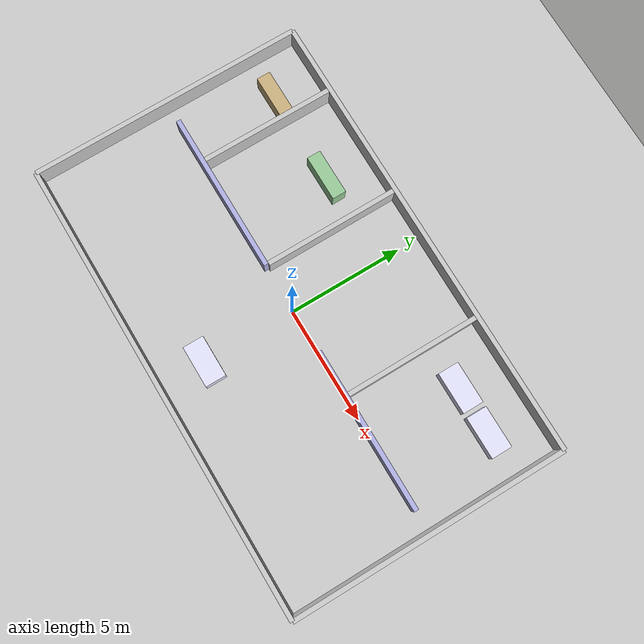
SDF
<?xml version="1.0"?>
<sdf version="1.6">
  <world name="hospital">

    <include><uri>model://ground_plane</uri></include>
    <include><uri>model://sun</uri></include>

    <!-- ── OUTER WALLS ── -->
    <!-- South wall -->
    <model name="wall_south">
      <static>true</static>
      <pose>0 -6 0.5 0 0 0</pose>
      <link name="link">
        <collision name="c"><geometry><box><size>20 0.2 1</size></box></geometry></collision>
        <visual name="v"><geometry><box><size>20 0.2 1</size></box></geometry>
          <material><ambient>0.8 0.8 0.8 1</ambient></material></visual>
      </link>
    </model>

    <!-- North wall -->
    <model name="wall_north">
      <static>true</static>
      <pose>0 6 0.5 0 0 0</pose>
      <link name="link">
        <collision name="c"><geometry><box><size>20 0.2 1</size></box></geometry></collision>
        <visual name="v"><geometry><box><size>20 0.2 1</size></box></geometry>
          <material><ambient>0.8 0.8 0.8 1</ambient></material></visual>
      </link>
    </model>

    <!-- West wall -->
    <model name="wall_west">
      <static>true</static>
      <pose>-10 0 0.5 0 0 0</pose>
      <link name="link">
        <collision name="c"><geometry><box><size>0.2 12 1</size></box></geometry></collision>
        <visual name="v"><geometry><box><size>0.2 12 1</size></box></geometry>
          <material><ambient>0.8 0.8 0.8 1</ambient></material></visual>
      </link>
    </model>

    <!-- East wall -->
    <model name="wall_east">
      <static>true</static>
      <pose>10 0 0.5 0 0 0</pose>
      <link name="link">
        <collision name="c"><geometry><box><size>0.2 12 1</size></box></geometry></collision>
        <visual name="v"><geometry><box><size>0.2 12 1</size></box></geometry>
          <material><ambient>0.8 0.8 0.8 1</ambient></material></visual>
      </link>
    </model>

    <!-- ── CORRIDOR DIVIDER (horizontal middle wall with gaps) ── -->
    <!-- Left section -->
    <model name="corridor_wall_left">
      <static>true</static>
      <pose>-5.5 0 0.5 0 0 0</pose>
      <link name="link">
        <collision name="c"><geometry><box><size>7 0.2 1</size></box></geometry></collision>
        <visual name="v"><geometry><box><size>7 0.2 1</size></box></geometry>
          <material><ambient>0.7 0.7 0.9 1</ambient></material></visual>
      </link>
    </model>
    <!-- Right section -->
    <model name="corridor_wall_right">
      <static>true</static>
      <pose>5.5 0 0.5 0 0 0</pose>
      <link name="link">
        <collision name="c"><geometry><box><size>7 0.2 1</size></box></geometry></collision>
        <visual name="v"><geometry><box><size>7 0.2 1</size></box></geometry>
          <material><ambient>0.7 0.7 0.9 1</ambient></material></visual>
      </link>
    </model>

    <!-- ── ROOM DIVIDERS ── -->
    <!-- Reception divider -->
    <model name="wall_reception">
      <static>true</static>
      <pose>-7 3 0.5 0 0 1.5708</pose>
      <link name="link">
        <collision name="c"><geometry><box><size>5.8 0.2 1</size></box></geometry></collision>
        <visual name="v"><geometry><box><size>5.8 0.2 1</size></box></geometry>
          <material><ambient>0.8 0.8 0.8 1</ambient></material></visual>
      </link>
    </model>

    <!-- Pharmacy divider -->
    <model name="wall_pharmacy">
      <static>true</static>
      <pose>-2 3 0.5 0 0 1.5708</pose>
      <link name="link">
        <collision name="c"><geometry><box><size>5.8 0.2 1</size></box></geometry></collision>
        <visual name="v"><geometry><box><size>5.8 0.2 1</size></box></geometry>
          <material><ambient>0.8 0.8 0.8 1</ambient></material></visual>
      </link>
    </model>

    <!-- ICU divider -->
    <model name="wall_icu">
      <static>true</static>
      <pose>4 3 0.5 0 0 1.5708</pose>
      <link name="link">
        <collision name="c"><geometry><box><size>5.8 0.2 1</size></box></geometry></collision>
        <visual name="v"><geometry><box><size>5.8 0.2 1</size></box></geometry>
          <material><ambient>0.8 0.8 0.8 1</ambient></material></visual>
      </link>
    </model>

    <!-- ── BEDS (obstacles) ── -->
    <!-- ICU bed 1 -->
    <model name="bed_icu_1">
      <static>true</static>
      <pose>6 4 0.3 0 0 0</pose>
      <link name="link">
        <collision name="c"><geometry><box><size>1.8 0.9 0.6</size></box></geometry></collision>
        <visual name="v"><geometry><box><size>1.8 0.9 0.6</size></box></geometry>
          <material><ambient>0.9 0.9 1.0 1</ambient></material></visual>
      </link>
    </model>

    <!-- ICU bed 2 -->
    <model name="bed_icu_2">
      <static>true</static>
      <pose>8 4 0.3 0 0 0</pose>
      <link name="link">
        <collision name="c"><geometry><box><size>1.8 0.9 0.6</size></box></geometry></collision>
        <visual name="v"><geometry><box><size>1.8 0.9 0.6</size></box></geometry>
          <material><ambient>0.9 0.9 1.0 1</ambient></material></visual>
      </link>
    </model>

    <!-- Patient room bed -->
    <model name="bed_patient_1">
      <static>true</static>
      <pose>0 -4 0.3 0 0 0</pose>
      <link name="link">
        <collision name="c"><geometry><box><size>1.8 0.9 0.6</size></box></geometry></collision>
        <visual name="v"><geometry><box><size>1.8 0.9 0.6</size></box></geometry>
          <material><ambient>0.9 0.9 1.0 1</ambient></material></visual>
      </link>
    </model>

    <!-- Pharmacy counter -->
    <model name="pharmacy_counter">
      <static>true</static>
      <pose>-4 4 0.4 0 0 0</pose>
      <link name="link">
        <collision name="c"><geometry><box><size>2.0 0.6 0.8</size></box></geometry></collision>
        <visual name="v"><geometry><box><size>2.0 0.6 0.8</size></box></geometry>
          <material><ambient>0.6 0.8 0.6 1</ambient></material></visual>
      </link>
    </model>

    <!-- Reception desk -->
    <model name="reception_desk">
      <static>true</static>
      <pose>-8 4 0.4 0 0 0</pose>
      <link name="link">
        <collision name="c"><geometry><box><size>2.0 0.6 0.8</size></box></geometry></collision>
        <visual name="v"><geometry><box><size>2.0 0.6 0.8</size></box></geometry>
          <material><ambient>0.8 0.7 0.5 1</ambient></material></visual>
      </link>
    </model>

  </world>
</sdf>
